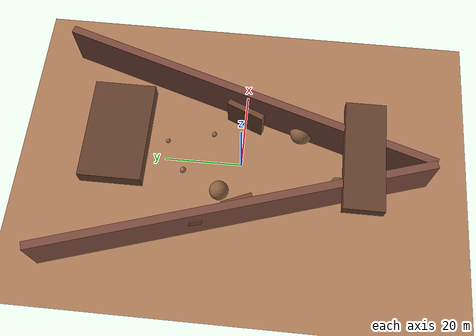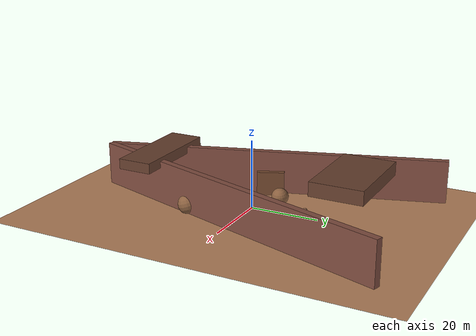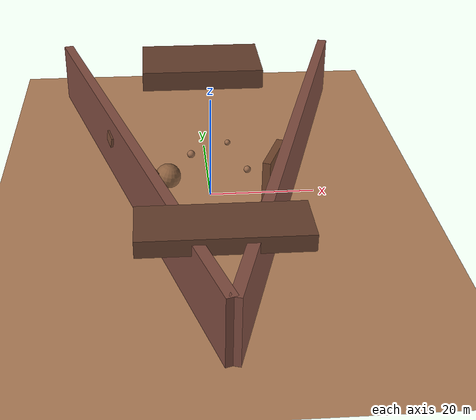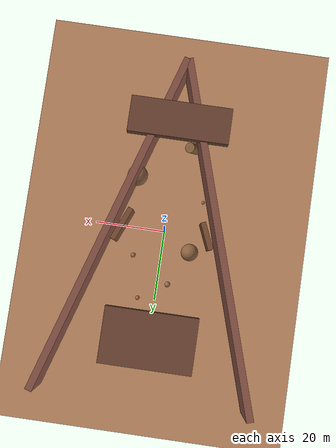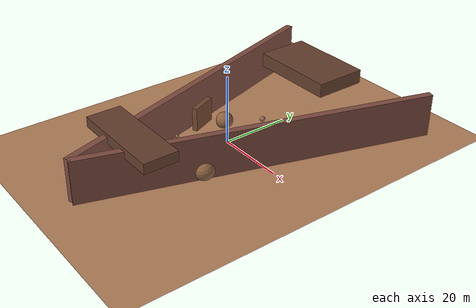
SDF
<?xml version="1.0" ?>
<sdf version="1.9">
  <!-- Martian Lava Tube/Canyon World for Swarm Exploration -->
  <world name="martian_lava_tube">

    <!-- Physics Configuration -->
    <physics name="mars_physics" type="ode">
      <max_step_size>0.001</max_step_size>
      <real_time_factor>1.0</real_time_factor>
      <real_time_update_rate>1000</real_time_update_rate>
      <gravity>3.721 0 0</gravity>  <!-- Mars gravity -->
    </physics>

    <!-- Scene Configuration for Dust Storm Visibility -->
    <scene>
      <ambient>0.6 0.5 0.4 1.0</ambient>
      <background>0.9 0.6 0.4 1.0</background>  <!-- Martian sky -->
      <shadows>true</shadows>
      <grid>false</grid>
      <origin_visual>false</origin_visual>

      <!-- Fog for dust simulation -->
      <fog>
        <type>exponential</type>
        <color>0.7 0.5 0.3 1.0</color>
        <density>0.0</density>
        <near>10</near>
        <far>500</far>
      </fog>
    </scene>

    <!-- Light Configuration - Mars Sun -->
    <light type="directional" name="mars_sun">
      <cast_shadows>true</cast_shadows>
      <pose>0 0 100 0 0 0</pose>
      <diffuse>1.0 0.9 0.7 1</diffuse>
      <specular>0.8 0.7 0.5 1</specular>
      <attenuation>0 0 0 1</attenuation>
      <direction>0.3 -0.5 -0.8</direction>
      <intensity>0.8</intensity>
    </light>

    <!-- Mars Atmosphere Plugin -->
    <plugin name="MarsAtmosphere" filename="libMarsAtmosphere.so">
      <dust_density>0.0</dust_density>
      <visibility_range>1000</visibility_range>
      <wind_speed>5.0</wind_speed>
      <pressure>600 Pa</pressure>
    </plugin>

    <!-- Ground Plane - Mars Surface -->
    <model name="ground_plane">
      <static>true</static>
      <link name="ground_link">
        <pose>0 0 -0.1 0 0 0</pose>
        <collision name="ground_collision">
          <geometry>
            <plane>
              <normal>0 0 1</normal>
              <size>500 500</size>
            </plane>
          </geometry>
          <surface>
            <friction>
              <ode>
                <mu>0.8</mu>
                <mu2>0.8</mu2>
              </ode>
            </friction>
          </surface>
        </collision>
        <visual name="ground_visual">
          <geometry>
            <plane>
              <normal>0 0 1</normal>
              <size>500 500</size>
            </plane>
          </geometry>
          <material>
            <ambient>0.6 0.4 0.3 1</ambient>
            <diffuse>0.7 0.5 0.35 1</diffuse>
            <specular>0.1 0.1 0.1 1</specular>
            <shininess>10</shininess>
          </material>
        </visual>
      </link>
    </model>

    <!-- Canyon/Lava Tube Structure -->
    <model name="lava_tube_canyon">
      <static>true</static>
      <pose>0 0 0 0 0 0</pose>

      <!-- Canyon Walls -->
      <link name="wall_left">
        <pose>-15 0 5 0 0 0.3</pose>
        <collision name="wall_left_coll">
          <geometry>
            <box>
              <size>2 100 15</size>
            </box>
          </geometry>
        </collision>
        <visual name="wall_left_vis">
          <geometry>
            <box>
              <size>2 100 15</size>
            </box>
          </geometry>
          <material>
            <ambient>0.4 0.25 0.2 1</ambient>
            <diffuse>0.5 0.3 0.25 1</diffuse>
            <specular>0.05 0.05 0.05 1</specular>
          </material>
        </visual>
        <!-- Rocky texture details -->
        <visual name="wall_left_detail1">
          <pose>-1.2 10 3 0.2 0.1 0</pose>
          <geometry>
            <box>
              <size>0.5 3 2</size>
            </box>
          </geometry>
          <material>
            <ambient>0.35 0.2 0.15 1</ambient>
            <diffuse>0.45 0.28 0.2 1</diffuse>
          </material>
        </visual>
      </link>

      <link name="wall_right">
        <pose>15 0 5 0 0 -0.3</pose>
        <collision name="wall_right_coll">
          <geometry>
            <box>
              <size>2 100 15</size>
            </box>
          </geometry>
        </collision>
        <visual name="wall_right_vis">
          <geometry>
            <box>
              <size>2 100 15</size>
            </box>
          </geometry>
          <material>
            <ambient>0.4 0.25 0.2 1</ambient>
            <diffuse>0.5 0.3 0.25 1</diffuse>
            <specular>0.05 0.05 0.05 1</specular>
          </material>
        </visual>
      </link>

      <!-- Lava Tube Ceiling Sections -->
      <link name="ceiling_section1">
        <pose>0 -30 12 0 0 0</pose>
        <collision name="ceiling_coll1">
          <geometry>
            <box>
              <size>28 10 3</size>
            </box>
          </geometry>
        </collision>
        <visual name="ceiling_vis1">
          <geometry>
            <box>
              <size>28 10 3</size>
            </box>
          </geometry>
          <material>
            <ambient>0.3 0.2 0.15 1</ambient>
            <diffuse>0.4 0.25 0.18 1</diffuse>
          </material>
        </visual>
      </link>

      <link name="ceiling_section2">
        <pose>0 30 14 0 0 0</pose>
        <collision name="ceiling_coll2">
          <geometry>
            <box>
              <size>25 15 4</size>
            </box>
          </geometry>
        </collision>
        <visual name="ceiling_vis2">
          <geometry>
            <box>
              <size>25 15 4</size>
            </box>
          </geometry>
          <material>
            <ambient>0.3 0.2 0.15 1</ambient>
            <diffuse>0.4 0.25 0.18 1</diffuse>
          </material>
        </visual>
      </link>

      <!-- Rock Formations (Obstacles) -->
      <link name="rock_cluster_1">
        <pose>-8 5 1.5 0.1 0.2 0.5</pose>
        <collision>
          <geometry>
            <sphere>
              <radius>2.5</radius>
            </sphere>
          </geometry>
        </collision>
        <visual>
          <geometry>
            <sphere>
              <radius>2.5</radius>
            </sphere>
          </geometry>
          <material>
            <ambient>0.45 0.3 0.2 1</ambient>
            <diffuse>0.55 0.38 0.25 1</diffuse>
          </material>
        </visual>
      </link>

      <link name="rock_cluster_2">
        <pose>10 -15 2 0.3 0 0.2</pose>
        <collision>
          <geometry>
            <sphere>
              <radius>3</radius>
            </sphere>
          </geometry>
        </collision>
        <visual>
          <geometry>
            <sphere>
              <radius>3</radius>
            </sphere>
          </geometry>
          <material>
            <ambient>0.45 0.3 0.2 1</ambient>
            <diffuse>0.55 0.38 0.25 1</diffuse>
          </material>
        </visual>
      </link>

      <link name="rock_formation_3">
        <pose>-5 -25 2.5 0 0.5 0.3</pose>
        <collision>
          <geometry>
            <cylinder>
              <radius>1.5</radius>
              <length>5</length>
            </cylinder>
          </geometry>
        </collision>
        <visual>
          <geometry>
            <cylinder>
              <radius>1.5</radius>
              <length>5</length>
            </cylinder>
          </geometry>
          <material>
            <ambient>0.4 0.28 0.18 1</ambient>
            <diffuse>0.5 0.35 0.22 1</diffuse>
          </material>
        </visual>
      </link>

      <!-- Boulder Field -->
      <link name="boulder_1">
        <pose>-3 15 0.8 0.1 0.2 0.3</pose>
        <collision>
          <geometry>
            <sphere>
              <radius>0.8</radius>
            </sphere>
          </geometry>
        </collision>
        <visual>
          <geometry>
            <sphere>
              <radius>0.8</radius>
            </sphere>
          </geometry>
          <material>
            <ambient>0.5 0.35 0.25 1</ambient>
            <diffuse>0.6 0.42 0.3 1</diffuse>
          </material>
        </visual>
      </link>

      <link name="boulder_2">
        <pose>5 20 0.6 0.2 0.1 0.7</pose>
        <collision>
          <geometry>
            <sphere>
              <radius>0.6</radius>
            </sphere>
          </geometry>
        </collision>
        <visual>
          <geometry>
            <sphere>
              <radius>0.6</radius>
            </sphere>
          </geometry>
          <material>
            <ambient>0.5 0.35 0.25 1</ambient>
            <diffuse>0.6 0.42 0.3 1</diffuse>
          </material>
        </visual>
      </link>

      <link name="boulder_3">
        <pose>-10 -10 0.5 0 0.3 0.1</pose>
        <collision>
          <geometry>
            <sphere>
              <radius>0.5</radius>
            </sphere>
          </geometry>
        </collision>
        <visual>
          <geometry>
            <sphere>
              <radius>0.5</radius>
            </sphere>
          </geometry>
          <material>
            <ambient>0.5 0.35 0.25 1</ambient>
            <diffuse>0.6 0.42 0.3 1</diffuse>
          </material>
        </visual>
      </link>

      <link name="boulder_4">
        <pose>8 8 0.7 0.3 0 0.5</pose>
        <collision>
          <geometry>
            <sphere>
              <radius>0.7</radius>
            </sphere>
          </geometry>
        </collision>
        <visual>
          <geometry>
            <sphere>
              <radius>0.7</radius>
            </sphere>
          </geometry>
          <material>
            <ambient>0.5 0.35 0.25 1</ambient>
            <diffuse>0.6 0.42 0.3 1</diffuse>
          </material>
        </visual>
      </link>

      <!-- Narrow Passage Points -->
      <link name="narrow_passage_left">
        <pose>-12 0 3 0 0 0.4</pose>
        <collision>
          <geometry>
            <box>
              <size>1.5 8 8</size>
            </box>
          </geometry>
        </collision>
        <visual>
          <geometry>
            <box>
              <size>1.5 8 8</size>
            </box>
          </geometry>
          <material>
            <ambient>0.35 0.22 0.15 1</ambient>
            <diffuse>0.45 0.28 0.18 1</diffuse>
          </material>
        </visual>
      </link>

      <link name="narrow_passage_right">
        <pose>12 0 4 0 0 -0.4</pose>
        <collision>
          <geometry>
            <box>
              <size>1.5 10 10</size>
            </box>
          </geometry>
        </collision>
        <visual>
          <geometry>
            <box>
              <size>1.5 10 10</size>
            </box>
          </geometry>
          <material>
            <ambient>0.35 0.22 0.15 1</ambient>
            <diffuse>0.45 0.28 0.18 1</diffuse>
          </material>
        </visual>
      </link>
    </model>

    <!-- Dust Particle System for Storm Simulation -->
    <model name="dust_system">
      <static>true</static>
      <link name="dust_link">
        <!-- Dust particles will be controlled via plugin -->
      </link>
    </model>

    <!-- Rover Spawn Markers (invisible) -->
    <model name="spawn_point_1">
      <static>true</static>
      <pose>-10 -35 0 0 0 1.57</pose>
    </model>
    <model name="spawn_point_2">
      <static>true</static>
      <pose>0 -35 0 0 0 1.57</pose>
    </model>
    <model name="spawn_point_3">
      <static>true</static>
      <pose>10 -35 0 0 0 1.57</pose>
    </model>
    <model name="spawn_point_4">
      <static>true</static>
      <pose>-5 -35 0 0 0 1.57</pose>
    </model>
    <model name="spawn_point_5">
      <static>true</static>
      <pose>5 -35 0 0 0 1.57</pose>
    </model>
    <model name="spawn_point_6">
      <static>true</static>
      <pose>-10 -35 0 0 0 1.57</pose>
    </model>
    <model name="spawn_point_7">
      <static>true</static>
      <pose>0 -35 0 0 0 1.57</pose>
    </model>
    <model name="spawn_point_8">
      <static>true</static>
      <pose>10 -35 0 0 0 1.57</pose>
    </model>

    <!-- Wind Simulation Plugin -->
    <plugin name="MarsWind" filename="libMarsWind.so">
      <update_interval>100</update_interval>
      <wind_velocity>3.0 1.0 0.5</wind_velocity>
      <gustiness>0.3</gustiness>
    </plugin>

  </world>
</sdf>
